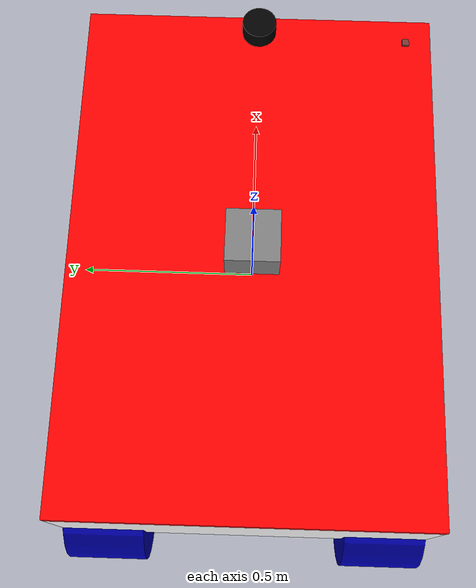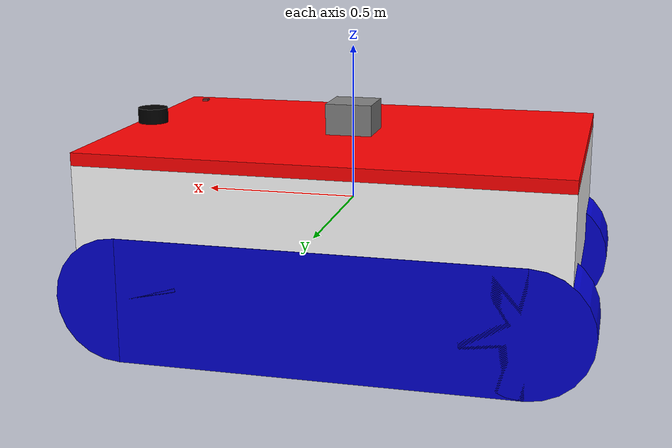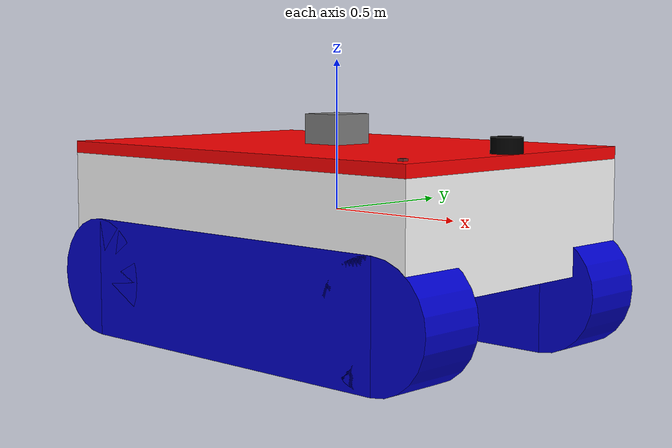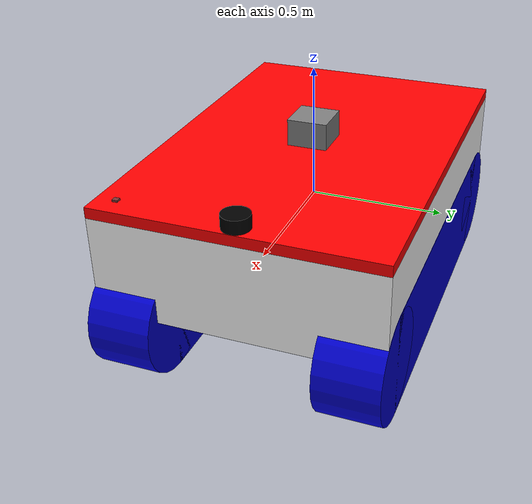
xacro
<?xml version="1.0"?>
<robot name="my_robot" xmlns:xacro="http://ros.org/wiki/xacro">

  <!-- Define robot constants -->
  <xacro:property name="base_length" value="1.50" />
  <xacro:property name="base_width" value="1.03" />
  <xacro:property name="base_height" value="0.36" />
  <xacro:property name="base_zoff" value="0.16" />

  <xacro:property name="plate_height" value="0.04" />

  <xacro:property name="wheel_radius" value="0.2" />
  <xacro:property name="wheel_width" value="0.23" />
  <xacro:property name="wheel_zoff" value="0.24" />

  <xacro:property name="wheel_box_length" value="1.25" />

  <xacro:property name="lidar_radius" value="0.05" />
  <xacro:property name="lidar_length" value="0.05" />
  <xacro:property name="gps_length" value="0.15" />
  <xacro:property name="gps_width" value="0.15" />
  <xacro:property name="gps_height" value="0.1" />
  <xacro:property name="imu_length" value="0.02" />
  <xacro:property name="imu_width" value="0.02" />
  <xacro:property name="imu_height" value="0.007" />

  <!-- Define some commonly used intertial properties  -->
  <xacro:macro name="box_inertia" params="m w h d">
    <inertial>
      <origin xyz="0 0 0" rpy="${pi/2} 0 ${pi/2}" />
      <mass value="${m}" />
      <inertia ixx="${(m/12) * (h*h + d*d)}" ixy="0.0" ixz="0.0" iyy="${(m/12) * (w*w + d*d)}"
        iyz="0.0" izz="${(m/12) * (w*w + h*h)}" />
    </inertial>
  </xacro:macro>

  <xacro:macro name="cylinder_inertia" params="m r h">
    <inertial>
      <origin xyz="0 0 0" rpy="${pi/2} 0 0" />
      <mass value="${m}" />
      <inertia ixx="${(m/12) * (3*r*r + h*h)}" ixy="0" ixz="0" iyy="${(m/12) * (3*r*r + h*h)}"
        iyz="0" izz="${(m/2) * (r*r)}" />
    </inertial>
  </xacro:macro>

  <!-- Robot Base -->
  <link name="base_link">
    <visual>
      <geometry>
        <box size="${base_length} ${base_width} ${base_height}" />
      </geometry>
      <material name="White">
        <color rgba="1 1 1 1.0" />
      </material>
    </visual>

    <collision>
      <geometry>
        <box size="${base_length} ${base_width} ${base_height}" />
      </geometry>
    </collision>

    <xacro:box_inertia m="200" w="${base_width}" d="${base_length}" h="${base_height}" />
  </link>

  <!-- Robot Footprint -->
  <link name="base_footprint">
  </link>

  <joint name="base_joint" type="fixed">
    <parent link="base_link" />
    <child link="base_footprint" />
    <origin xyz="0.0 0.0 ${-(base_zoff)}" rpy="0 0 0" />
  </joint>

  <!-- Robot Plate -->
  <link name="plate_link">
    <visual>
      <geometry>
        <box size="${base_length} ${base_width} ${plate_height}" />
      </geometry>
      <material name="Red">
        <color rgba="1 0 0 1.0" />
      </material>
    </visual>

    <collision>
      <geometry>
        <box size="${base_length} ${base_width} ${plate_height}" />
      </geometry>
    </collision>
    <xacro:box_inertia m="10" w="${base_width}" d="${base_length}" h="${plate_height}" />
  </link>

  <!-- Plate to Base joint -->
  <joint name="plate_base_joint" type="fixed">
    <parent link="base_link" />
    <child link="plate_link" />
    <origin xyz="0 0 ${base_height/2 + plate_height/2}" rpy="0 0 0" />
  </joint>

  <!-- Wheels -->
  <xacro:macro name="wheel" params="name y">
    <link name="${name}_link">
      <visual>
        <origin xyz="0 0 0" rpy="${pi/2} 0 0" />
        <geometry>
          <cylinder radius="${wheel_radius}" length="${wheel_width}" />
        </geometry>
        <material name="Blue">
          <color rgba="0 0 0.5 1.0" />
        </material>
      </visual>
      <collision>
        <origin xyz="0 0 0" rpy="${pi/2} 0 0" />
        <geometry>
          <cylinder radius="${wheel_radius}" length="${wheel_width}" />
        </geometry>
      </collision>
      <xacro:cylinder_inertia m="25" r="${wheel_radius}" h="${wheel_width}" />
    </link>

    <!-- Wheel joint -->
    <joint name="${name}_joint" type="continuous">
      <parent link="base_link" />
      <child link="${name}_link" />
      <origin xyz="0 ${y} ${-wheel_zoff}" rpy="0 0 0" />
      <axis xyz="0 1 0" />
    </joint>
  </xacro:macro>

  <!-- Create left and right wheel -->
  <xacro:wheel name="left_wheel" y="${base_width/2 - wheel_width/2}" />
  <xacro:wheel name="right_wheel" y="${-base_width/2 + wheel_width/2}" />

  <!-- Box attached to Wheel -->
  <xacro:macro name="wheel_box" params="name y">
    <link name="${name}_box_link">
      <visual>
        <geometry>
          <box size="${wheel_box_length} ${wheel_radius*2} ${wheel_width}" />
        </geometry>
        <material name="Blue">
          <color rgba="0 0 0.8 1.0" />
        </material>
      </visual>
      <collision>
        <geometry>
          <box size="${wheel_box_length} ${wheel_radius*2} ${wheel_width}" />
        </geometry>
      </collision>
      <xacro:box_inertia m="5" w="${base_width}" d="${base_length}" h="${plate_height}" />
    </link>

    <joint name="${name}_box_joint" type="fixed">
      <parent link="base_link" />
      <child link="${name}_box_link" />
      <origin xyz="0 ${y} ${-wheel_zoff}" rpy="${pi/2} 0 0" />
    </joint>
  </xacro:macro>

  <!-- Create left and right wheel_boxes -->
  <xacro:wheel_box name="left_wheel" y="${base_width/2 - wheel_width/2 + 0.001}" />
  <xacro:wheel_box name="right_wheel" y="${-base_width/2 + wheel_width/2 -0.001}" />

  <!-- Create additional front left and right wheel_box_cylinders -->
  <xacro:macro name="additional_f_wheel" params="name">
    <link name="${name}_additional_f_wheel_link">
      <visual>
        <geometry>
          <cylinder radius="${wheel_radius}" length="${wheel_width}" />
        </geometry>
        <material name="Blue">
          <color rgba="0 0 0.8 1.0" />
        </material>
      </visual>
      <collision>
        <geometry>
          <cylinder radius="${wheel_radius}" length="${wheel_width}" />
        </geometry>
      </collision>
      <xacro:cylinder_inertia m="10" r="${wheel_radius}" h="${wheel_width}" />
    </link>

    <joint name="${name}_additional_f_wheel_joint" type="fixed">
      <parent link="${name}_box_link" />
      <child link="${name}_additional_f_wheel_link" />
      <origin rpy="0 0 0" xyz="${wheel_box_length/2} 0 0" />
    </joint>
  </xacro:macro>

  <!-- Create left and right additional wheels for each box -->
  <xacro:additional_f_wheel name="left_wheel" />
  <xacro:additional_f_wheel name="right_wheel" />

  <!-- Create additional rear left and right wheel_box_cylinders -->
  <xacro:macro name="additional_r_wheel" params="name">
    <link name="${name}_additional_r_wheel_link">
      <visual>
        <geometry>
          <cylinder radius="${wheel_radius}" length="${wheel_width}" />
        </geometry>
        <material name="Blue">
          <color rgba="0 0 0.8 1.0" />
        </material>
      </visual>
      <collision>
        <geometry>
          <cylinder radius="${wheel_radius}" length="${wheel_width}" />
        </geometry>
      </collision>
      <xacro:cylinder_inertia m="10" r="${wheel_radius}" h="${wheel_width}" />
    </link>

    <joint name="${name}_additional_r_wheel_joint" type="fixed">
      <parent link="${name}_box_link" />
      <child link="${name}_additional_r_wheel_link" />
      <origin rpy="0 0 0" xyz="${-wheel_box_length/2} 0 0" />
    </joint>
  </xacro:macro>

  <!-- Create left and right additional wheels for each box -->
  <xacro:additional_r_wheel name="left_wheel" />
  <xacro:additional_r_wheel name="right_wheel" />

  <!-- GPS -->
  <link name="gps_link">
    <visual>
      <geometry>
        <box size="${gps_length} ${gps_width} ${gps_height}" />
      </geometry>
      <material name="Grey">
        <color rgba="0.5 0.5 .5 1.0" />
      </material>
    </visual>
    <collision>
      <geometry>
        <box size="${gps_length} ${gps_width} ${gps_height}" />
      </geometry>
    </collision>
    <xacro:box_inertia m="2" w="${gps_width}" d="${gps_length}" h="${gps_height}" />
  </link>

  <!-- GPS Joint -->
  <joint name="gps_joint" type="fixed">
    <parent link="plate_link" />
    <child link="gps_link" />
    <origin
      xyz="0 0 ${plate_height/2 + gps_height/2}"
      rpy="0 0 0" />
  </joint>

  <!-- Lidar -->
  <link name="base_scan">
    <visual>
      <geometry>
        <cylinder radius="${lidar_radius}" length="${lidar_length}" />
      </geometry>
      <material name="Black">
        <color rgba="0 0 0 1.0" />
      </material>
    </visual>
    <collision>
      <geometry>
        <cylinder radius="${lidar_radius}" length="${lidar_length}" />
      </geometry>
    </collision>
    <xacro:cylinder_inertia m="0.7" r="${lidar_radius}" h="${lidar_length}" />
  </link>

  <!-- Lidar Joint -->
  <joint name="scan_joint" type="fixed">
    <parent link="plate_link" />
    <child link="base_scan" />
    <origin xyz="${base_length/2 - lidar_radius} 0 ${plate_height/2 + lidar_length/2}"
      rpy="0 0 3.14159" />
  </joint>

  <!-- imu -->
  <link name="imu_link">
    <visual>
      <geometry>
        <box size="${imu_length} ${imu_width} ${imu_height}" />
      </geometry>
      <material name="red">
        <color rgba="0.5 0.2 .2 1.0" />
      </material>
    </visual>
    <xacro:box_inertia m="0.2" w="${gps_width}" d="${gps_length}" h="${gps_height}" />
  </link>

  <!-- imu Joint -->
  <joint name="imu_joint" type="fixed">
    <parent link="plate_link" />
    <child link="imu_link" />
    <origin
      xyz="${base_length/2 - imu_length/2 -0.065} ${-base_width/2 + imu_width/2 +0.065} ${plate_height/2 + imu_height/2}"
      rpy="0 ${pi} ${-pi/2}" />
  </joint>

  <!-- Gazebo -->
  <gazebo reference="plate_link">
    <material>Gazebo/Red</material>
  </gazebo>

  <gazebo reference="right_wheel_link">
    <material>Gazebo/Black</material>
    <mu1>8000</mu1>
    <mu2>8000</mu2>
  </gazebo>

  <gazebo reference="left_wheel_link">
    <material>Gazebo/Black</material>
    <mu1>8000</mu1>
    <mu2>8000</mu2>
  </gazebo>

  <gazebo reference="right_wheel_box_link">
    <material>Gazebo/Black</material>
    <mu1>0.1</mu1>
    <mu2>0.1</mu2>
  </gazebo>

  <gazebo reference="left_wheel_box_link">
    <material>Gazebo/Black</material>
    <mu1>0.1</mu1>
    <mu2>0.1</mu2>
  </gazebo>

  <gazebo reference="right_wheel_additional_r_wheel_link">
    <material>Gazebo/Black</material>
    <mu1>0.2</mu1>
    <mu2>0.2</mu2>
  </gazebo>

  <gazebo reference="left_wheel_additional_r_wheel_link">
    <material>Gazebo/Black</material>
    <mu1>0.2</mu1>
    <mu2>0.2</mu2>
  </gazebo>

  <gazebo reference="right_wheel_additional_f_wheel_link">
    <material>Gazebo/Black</material>
    <mu1>0.2</mu1>
    <mu2>0.2</mu2>
  </gazebo>

  <gazebo reference="left_wheel_additional_f_wheel_link">
    <material>Gazebo/Black</material>
    <mu1>0.2</mu1>
    <mu2>0.2</mu2>
  </gazebo>

  <gazebo>
    <plugin name="differential_drive_controller" filename="libgazebo_ros_diff_drive.so">
      <ros>
        <namespace></namespace>
        <remapping>cmd_vel:=cmd_vel</remapping>
      </ros>
      <update_rate>30</update_rate>
      <left_joint>left_wheel_joint</left_joint>
      <right_joint>right_wheel_joint</right_joint>
      <wheel_separation>0.8</wheel_separation>
      <wheel_diameter>0.4</wheel_diameter>
      <max_wheel_torque>2000</max_wheel_torque>
      <max_wheel_acceleration>2.0</max_wheel_acceleration>
      <command_topic>cmd_vel</command_topic>
      <publish_odom>true</publish_odom>
      <publish_odom_tf>false</publish_odom_tf>
      <publish_wheel_tf>true</publish_wheel_tf>
      <odometry_topic>wheel/odometry</odometry_topic>
      <odometry_frame>odom</odometry_frame>
      <odometry_source>0</odometry_source>
      <robot_base_frame>base_link</robot_base_frame>
    </plugin>
    <plugin name="joint_state_pub" filename="libgazebo_ros_joint_state_publisher.so">
      <ros>
        <remapping>~/out:=joint_states</remapping>
      </ros>
      <update_rate>30</update_rate>
      <joint_name>left_wheel_joint</joint_name>
      <joint_name>right_wheel_joint</joint_name>
    </plugin>

  </gazebo>

  <gazebo reference="gps_link">
    <sensor name="rtk_gps" type="gps">
      <always_on>true</always_on>
      <update_rate>5.0</update_rate>
      <gps>
        <position_sensing>
          <horizontal>
            <noise type="gaussian">
              <mean>0.0</mean>
              <stddev>1e-2</stddev>
            </noise>
          </horizontal>
          <vertical>
            <noise type="gaussian">
              <mean>0.0</mean>
              <stddev>1e-1</stddev>
            </noise>
          </vertical>
        </position_sensing>
      </gps>
      <plugin name="mobile_rtk_gps" filename="libgazebo_ros_gps_sensor.so">
        <ros>
          <remapping>~/out:=gps/fix</remapping>
          <frame_id>gps_link</frame_id>
        </ros>
      </plugin>
    </sensor>
  </gazebo>

  <gazebo reference="base_scan">
    <sensor name="lidar" type="ray">
      <always_on>true</always_on>
      <visualize>true</visualize>
      <update_rate>5</update_rate>
      <ray>
        <scan>
          <horizontal>
            <samples>360</samples>
            <resolution>1.000000</resolution>
            <min_angle>1.4070000</min_angle>
            <max_angle>-1.4070000</max_angle>
          </horizontal>
        </scan>
        <range>
          <min>0.120000</min>
          <max>3.5</max>
          <resolution>0.015000</resolution>
        </range>
        <noise>
          <type>gaussian</type>
          <mean>0.0</mean>
          <stddev>0.01</stddev>
        </noise>
      </ray>
      <plugin name="scan" filename="libgazebo_ros_ray_sensor.so">
        <ros>
          <remapping>~/out:=scan</remapping>
        </ros>
        <output_type>sensor_msgs/LaserScan</output_type>
        <frame_name>base_scan</frame_name>
      </plugin>
    </sensor>
  </gazebo>

  <gazebo reference="imu_link">
    <sensor name="imu_sensor" type="imu">
      <plugin filename="libgazebo_ros_imu_sensor.so" name="imu_plugin">
        <ros>
          <namespace></namespace>
          <remapping>~/out:=vectornav/imu_uncompensated</remapping>
        </ros>
        <initial_orientation_as_reference>false</initial_orientation_as_reference>
      </plugin>
      <always_on>true</always_on>
      <update_rate>100</update_rate>
      <visualize>true</visualize>
      <imu>
        <angular_velocity>
          <x>
            <noise type="gaussian">
              <mean>0.0</mean>
              <stddev>2e-4</stddev>
              <bias_mean>0.0000075</bias_mean>
              <bias_stddev>0.0000008</bias_stddev>
            </noise>
          </x>
          <y>
            <noise type="gaussian">
              <mean>0.0</mean>
              <stddev>2e-4</stddev>
              <bias_mean>0.0000075</bias_mean>
              <bias_stddev>0.0000008</bias_stddev>
            </noise>
          </y>
          <z>
            <noise type="gaussian">
              <mean>0.0</mean>
              <stddev>2e-4</stddev>
              <bias_mean>0.0000075</bias_mean>
              <bias_stddev>0.0000008</bias_stddev>
            </noise>
          </z>
        </angular_velocity>
        <linear_acceleration>
          <x>
            <noise type="gaussian">
              <mean>0.0</mean>
              <stddev>1.7e-2</stddev>
              <bias_mean>0.1</bias_mean>
              <bias_stddev>0.001</bias_stddev>
            </noise>
          </x>
          <y>
            <noise type="gaussian">
              <mean>0.0</mean>
              <stddev>1.7e-2</stddev>
              <bias_mean>0.1</bias_mean>
              <bias_stddev>0.001</bias_stddev>
            </noise>
          </y>
          <z>
            <noise type="gaussian">
              <mean>0.0</mean>
              <stddev>1.7e-2</stddev>
              <bias_mean>0.1</bias_mean>
              <bias_stddev>0.001</bias_stddev>
            </noise>
          </z>
        </linear_acceleration>
      </imu>
    </sensor>
  </gazebo>

</robot>
